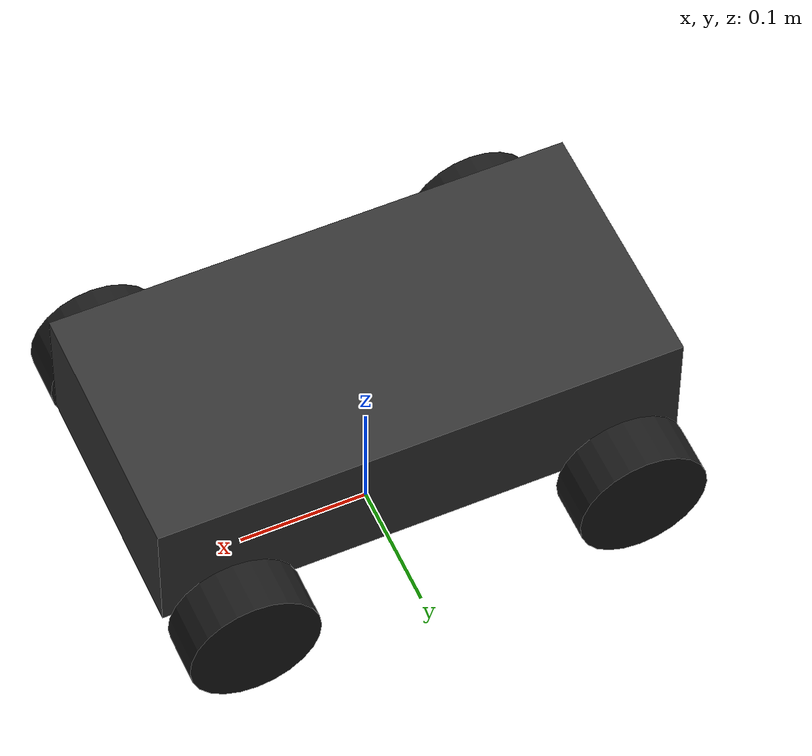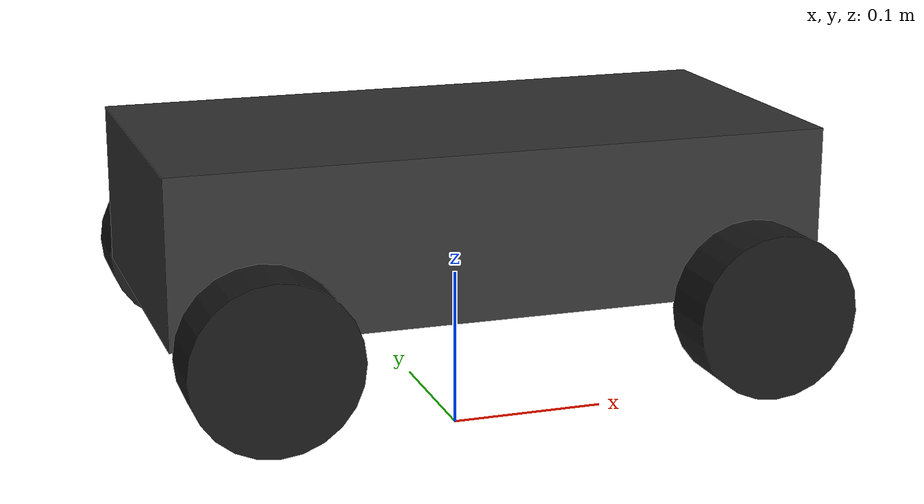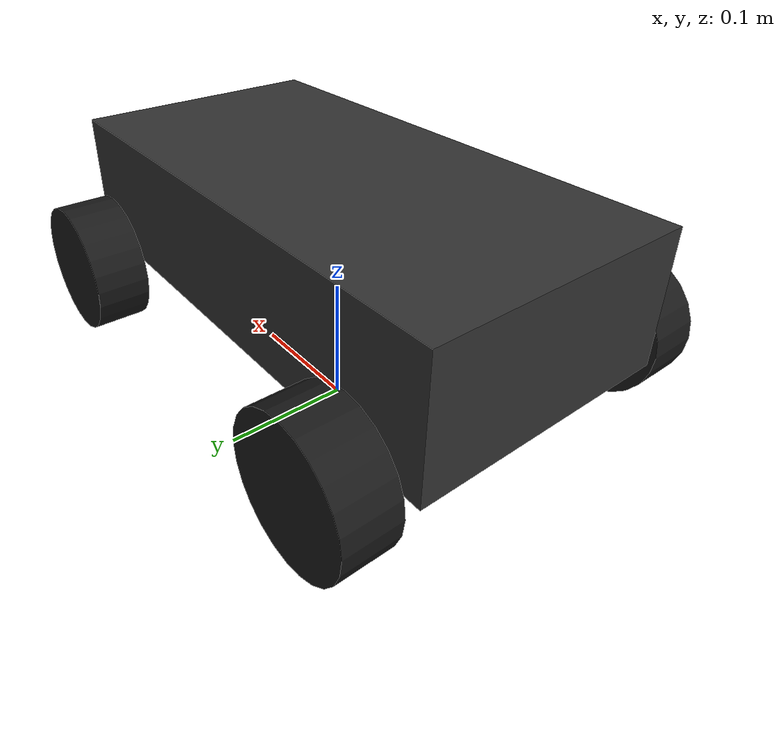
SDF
<?xml version="1.0" ?>
<sdf version="1.9">
  <model name="ackermann_robot">
    <pose>0 0 0.05 0 0 0</pose>
    <!-- Main chassis -->
    <link name="chassis">
      <pose>0 0 0.1 0 0 0</pose>
      <inertial>
        <mass>1.0</mass>
        <inertia>
          <ixx>0.1</ixx>
          <iyy>0.1</iyy>
          <izz>0.1</izz>
          <ixy>0</ixy>
          <ixz>0</ixz>
          <iyz>0</iyz>
        </inertia>
      </inertial>
      <collision name="collision">
        <geometry>
          <box>
            <size>0.4 0.2 0.1</size>
          </box>
        </geometry>
      </collision>
      <visual name="visual">
        <geometry>
          <box>
            <size>0.4 0.2 0.1</size>
          </box>
        </geometry>
        <material>
          <ambient>0.2 0.2 0.2 1.0</ambient>
          <diffuse>0.2 0.2 0.2 1.0</diffuse>
          <specular>0.2 0.2 0.2 1.0</specular>
        </material>
      </visual>

      <!-- Camera sensor -->
      <sensor name="camera" type="camera">
        <pose>0.2 0 0.1 0 0 0</pose>
        <camera>
          <horizontal_fov>1.047</horizontal_fov>
          <image>
            <width>640</width>
            <height>480</height>
          </image>
          <clip>
            <near>0.1</near>
            <far>100</far>
          </clip>
        </camera>
        <always_on>1</always_on>
        <update_rate>30</update_rate>
        <visualize>true</visualize>
        <topic>camera</topic>
      </sensor>

      <!-- Ultrasonic sensor (using ray sensor) -->
      <sensor name="ultrasonic" type="gpu_ray">
        <pose>0.2 0 0.05 0 0 0</pose>
        <ray>
          <scan>
            <horizontal>
              <samples>5</samples>
              <resolution>1</resolution>
              <min_angle>-0.1</min_angle>
              <max_angle>0.1</max_angle>
            </horizontal>
          </scan>
          <range>
            <min>0.05</min>
            <max>5.0</max>
            <resolution>0.01</resolution>
          </range>
        </ray>
        <always_on>1</always_on>
        <update_rate>10</update_rate>
        <visualize>true</visualize>
        <topic>ultrasonic</topic>
      </sensor>
    </link>

    <!-- Front left wheel -->
    <link name="front_left_wheel">
      <pose>0.15 0.13 0.05 0 0 0</pose>
      <inertial>
        <mass>0.5</mass>
        <inertia>
          <ixx>0.01</ixx>
          <iyy>0.01</iyy>
          <izz>0.01</izz>
          <ixy>0</ixy>
          <ixz>0</ixz>
          <iyz>0</iyz>
        </inertia>
      </inertial>
      <collision name="collision">
        <pose>0 0 0 1.5707 0 0</pose>
        <geometry>
          <cylinder>
            <radius>0.05</radius>
            <length>0.04</length>
          </cylinder>
        </geometry>
      </collision>
      <visual name="visual">
        <pose>0 0 0 1.5707 0 0</pose>
        <geometry>
          <cylinder>
            <radius>0.05</radius>
            <length>0.04</length>
          </cylinder>
        </geometry>
        <material>
          <ambient>0.1 0.1 0.1 1</ambient>
          <diffuse>0.1 0.1 0.1 1</diffuse>
          <specular>0.1 0.1 0.1 1</specular>
        </material>
      </visual>
    </link>

    <!-- Front left steering link -->
    <link name="front_left_steering_link">
      <pose>0.15 0.13 0.05 0 0 0</pose>
      <inertial>
        <mass>0.1</mass>
        <inertia>
          <ixx>0.001</ixx>
          <iyy>0.001</iyy>
          <izz>0.001</izz>
          <ixy>0</ixy>
          <ixz>0</ixz>
          <iyz>0</iyz>
        </inertia>
      </inertial>
    </link>

    <!-- Front right wheel -->
    <link name="front_right_wheel">
      <pose>0.15 -0.13 0.05 0 0 0</pose>
      <inertial>
        <mass>0.5</mass>
        <inertia>
          <ixx>0.01</ixx>
          <iyy>0.01</iyy>
          <izz>0.01</izz>
          <ixy>0</ixy>
          <ixz>0</ixz>
          <iyz>0</iyz>
        </inertia>
      </inertial>
      <collision name="collision">
        <pose>0 0 0 1.5707 0 0</pose>
        <geometry>
          <cylinder>
            <radius>0.05</radius>
            <length>0.04</length>
          </cylinder>
        </geometry>
      </collision>
      <visual name="visual">
        <pose>0 0 0 1.5707 0 0</pose>
        <geometry>
          <cylinder>
            <radius>0.05</radius>
            <length>0.04</length>
          </cylinder>
        </geometry>
        <material>
          <ambient>0.1 0.1 0.1 1</ambient>
          <diffuse>0.1 0.1 0.1 1</diffuse>
          <specular>0.1 0.1 0.1 1</specular>
        </material>
      </visual>
    </link>

    <!-- Front right steering link -->
    <link name="front_right_steering_link">
      <pose>0.15 -0.13 0.05 0 0 0</pose>
      <inertial>
        <mass>0.1</mass>
        <inertia>
          <ixx>0.001</ixx>
          <iyy>0.001</iyy>
          <izz>0.001</izz>
          <ixy>0</ixy>
          <ixz>0</ixz>
          <iyz>0</iyz>
        </inertia>
      </inertial>
    </link>

    <!-- Rear left wheel -->
    <link name="rear_left_wheel">
      <pose>-0.15 0.13 0.05 0 0 0</pose>
      <inertial>
        <mass>0.5</mass>
        <inertia>
          <ixx>0.01</ixx>
          <iyy>0.01</iyy>
          <izz>0.01</izz>
          <ixy>0</ixy>
          <ixz>0</ixz>
          <iyz>0</iyz>
        </inertia>
      </inertial>
      <collision name="collision">
        <pose>0 0 0 1.5707 0 0</pose>
        <geometry>
          <cylinder>
            <radius>0.05</radius>
            <length>0.04</length>
          </cylinder>
        </geometry>
      </collision>
      <visual name="visual">
        <pose>0 0 0 1.5707 0 0</pose>
        <geometry>
          <cylinder>
            <radius>0.05</radius>
            <length>0.04</length>
          </cylinder>
        </geometry>
        <material>
          <ambient>0.1 0.1 0.1 1</ambient>
          <diffuse>0.1 0.1 0.1 1</diffuse>
          <specular>0.1 0.1 0.1 1</specular>
        </material>
      </visual>
    </link>

    <!-- Rear right wheel -->
    <link name="rear_right_wheel">
      <pose>-0.15 -0.13 0.05 0 0 0</pose>
      <inertial>
        <mass>0.5</mass>
        <inertia>
          <ixx>0.01</ixx>
          <iyy>0.01</iyy>
          <izz>0.01</izz>
          <ixy>0</ixy>
          <ixz>0</ixz>
          <iyz>0</iyz>
        </inertia>
      </inertial>
      <collision name="collision">
        <pose>0 0 0 1.5707 0 0</pose>
        <geometry>
          <cylinder>
            <radius>0.05</radius>
            <length>0.04</length>
          </cylinder>
        </geometry>
      </collision>
      <visual name="visual">
        <pose>0 0 0 1.5707 0 0</pose>
        <geometry>
          <cylinder>
            <radius>0.05</radius>
            <length>0.04</length>
          </cylinder>
        </geometry>
        <material>
          <ambient>0.1 0.1 0.1 1</ambient>
          <diffuse>0.1 0.1 0.1 1</diffuse>
          <specular>0.1 0.1 0.1 1</specular>
        </material>
      </visual>
    </link>

    <!-- Front left steering hinge -->
    <joint name="front_left_steer_joint" type="revolute">
      <parent>chassis</parent>
      <child>front_left_steering_link</child>
      <axis>
        <xyz>0 0 1</xyz>
        <limit>
          <lower>-0.5</lower>
          <upper>0.5</upper>
          <effort>1000000</effort>
        </limit>
      </axis>
    </joint>

    <!-- Front right steering hinge -->
    <joint name="front_right_steer_joint" type="revolute">
      <parent>chassis</parent>
      <child>front_right_steering_link</child>
      <axis>
        <xyz>0 0 1</xyz>
        <limit>
          <lower>-0.5</lower>
          <upper>0.5</upper>
          <effort>1000000</effort>
        </limit>
      </axis>
    </joint>

    <!-- Front left wheel rotation joint -->
    <joint name="front_left_wheel_joint" type="revolute">
      <parent>front_left_steering_link</parent>
      <child>front_left_wheel</child>
      <axis>
        <xyz>0 1 0</xyz>
        <limit>
          <effort>1000000</effort>
        </limit>
        <dynamics>
          <friction>0.01</friction>
          <damping>0.05</damping>
        </dynamics>
      </axis>
    </joint>

    <!-- Front right wheel rotation joint -->
    <joint name="front_right_wheel_joint" type="revolute">
      <parent>front_right_steering_link</parent>
      <child>front_right_wheel</child>
      <axis>
        <xyz>0 1 0</xyz>
        <limit>
          <effort>1000000</effort>
        </limit>
        <dynamics>
          <friction>0.01</friction>
          <damping>0.05</damping>
        </dynamics>
      </axis>
    </joint>

    <!-- Rear left wheel joint -->
    <joint name="rear_left_wheel_joint" type="revolute">
      <parent>chassis</parent>
      <child>rear_left_wheel</child>
      <axis>
        <xyz>0 1 0</xyz>
        <limit>
          <effort>1000000</effort>
        </limit>
        <dynamics>
          <friction>0.01</friction>
          <damping>0.05</damping>
        </dynamics>
      </axis>
    </joint>

    <!-- Rear right wheel joint -->
    <joint name="rear_right_wheel_joint" type="revolute">
      <parent>chassis</parent>
      <child>rear_right_wheel</child>
      <axis>
        <xyz>0 1 0</xyz>
        <limit>
          <effort>1000000</effort>
        </limit>
        <dynamics>
          <friction>0.01</friction>
          <damping>0.05</damping>
        </dynamics>
      </axis>
    </joint>

    <!-- Ackermann steering plugin -->
    <plugin filename="libgz-sim8-ackermann-steering-system.so" name="gz::sim::systems::AckermannSteering">
      <left_joint>front_left_wheel_joint</left_joint>
      <left_joint>rear_left_wheel_joint</left_joint>
      <right_joint>front_right_wheel_joint</right_joint>
      <right_joint>rear_right_wheel_joint</right_joint>
      <left_steering_joint>front_left_steer_joint</left_steering_joint>
      <right_steering_joint>front_right_steer_joint</right_steering_joint>
      <kingpin_width>0.26</kingpin_width>
      <steering_limit>0.5</steering_limit>
      <wheel_base>0.3</wheel_base>
      <wheel_separation>0.26</wheel_separation>
      <wheel_radius>0.05</wheel_radius>
      <wheel_torque>20.0</wheel_torque>
      <cmd_vel_topic>/model/ackermann_robot/cmd_vel</cmd_vel_topic>
      <min_velocity>-2</min_velocity>
      <max_velocity>2</max_velocity>
      <min_acceleration>-3</min_acceleration>
      <max_acceleration>3</max_acceleration>
    </plugin>
  </model>
</sdf>
